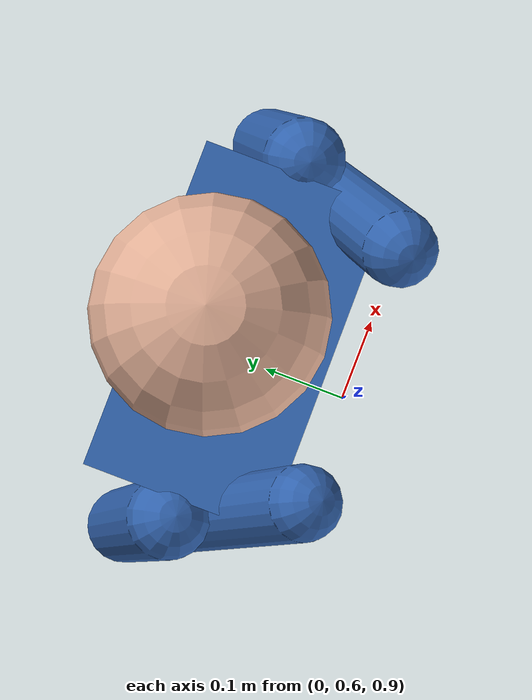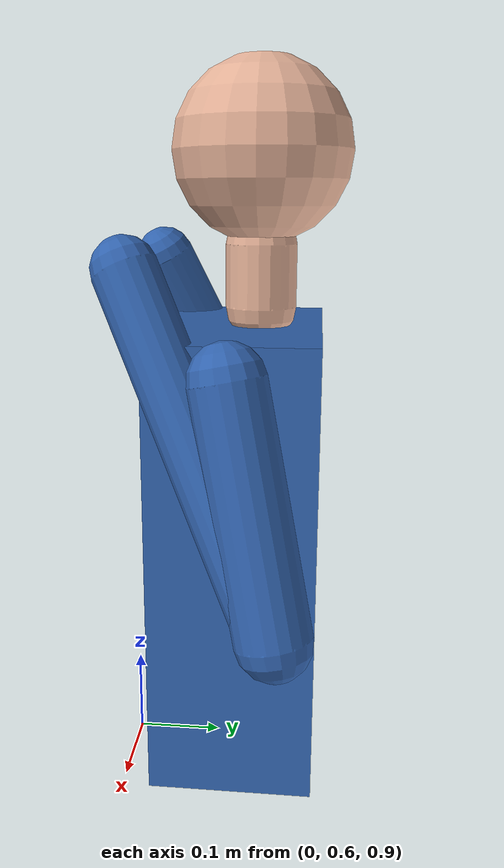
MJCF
<mujoco model="trainee">
  <worldbody>
    <body name="trainee" pos="0 0 0">
      <!-- Visual body, facing -y toward the robot. -->
      <geom name="torso_geom" type="box" pos="0 0.73 1.18" size="0.16 0.09 0.25"
            rgba="0.20 0.40 0.70 1"/>
      <geom name="head_geom" type="sphere" pos="0 0.75 1.62" size="0.10"
            rgba="0.90 0.70 0.60 1"/>
      <geom name="neck_geom" type="capsule" fromto="0 0.75 1.45 0 0.75 1.52" size="0.04"
            rgba="0.90 0.70 0.60 1"/>
      <geom name="l_upper_arm" type="capsule" fromto="0.18 0.73 1.40 0.22 0.78 1.15"
            size="0.04" rgba="0.20 0.40 0.70 1"/>
      <geom name="r_upper_arm" type="capsule" fromto="-0.18 0.73 1.40 -0.22 0.78 1.15"
            size="0.04" rgba="0.20 0.40 0.70 1"/>
      <geom name="l_forearm" type="capsule" fromto="0.22 0.78 1.15 0.12 0.62 1.50"
            size="0.035" rgba="0.20 0.40 0.70 1"/>
      <geom name="r_forearm" type="capsule" fromto="-0.22 0.78 1.15 -0.12 0.62 1.50"
            size="0.035" rgba="0.20 0.40 0.70 1"/>

      <!-- Ground-truth keypoints. Order and names mirror core.types.Keypoint. -->
      <site name="kp_head" pos="0 0.75 1.62" size="0.02" rgba="1 0 0 0.6"/>
      <site name="kp_neck" pos="0 0.75 1.45" size="0.02" rgba="1 0.5 0 0.6"/>
      <site name="kp_chest" pos="0 0.72 1.25" size="0.02" rgba="1 1 0 0.6"/>
      <site name="kp_l_shoulder" pos="0.18 0.73 1.40" size="0.02" rgba="0 1 0 0.6"/>
      <site name="kp_r_shoulder" pos="-0.18 0.73 1.40" size="0.02" rgba="0 1 0 0.6"/>
      <site name="kp_l_elbow" pos="0.22 0.78 1.15" size="0.02" rgba="0 1 1 0.6"/>
      <site name="kp_r_elbow" pos="-0.22 0.78 1.15" size="0.02" rgba="0 1 1 0.6"/>
      <site name="kp_l_hand" pos="0.12 0.62 1.50" size="0.02" rgba="0 0 1 0.6"/>
      <site name="kp_r_hand" pos="-0.12 0.62 1.50" size="0.02" rgba="0 0 1 0.6"/>
    </body>
  </worldbody>
</mujoco>
